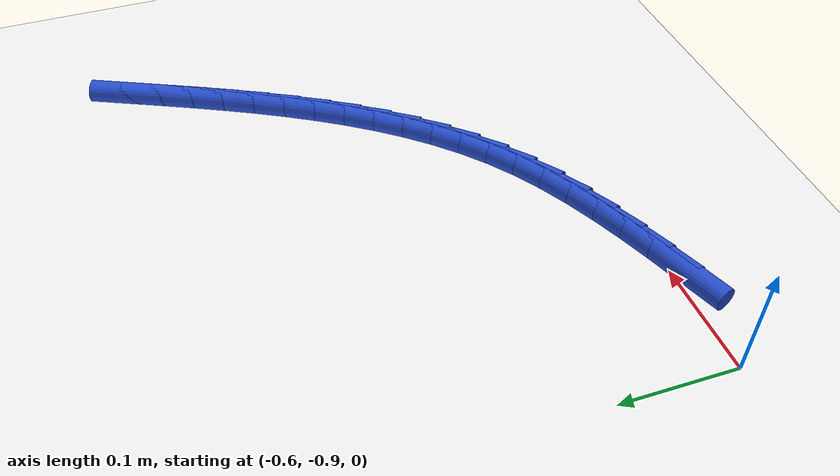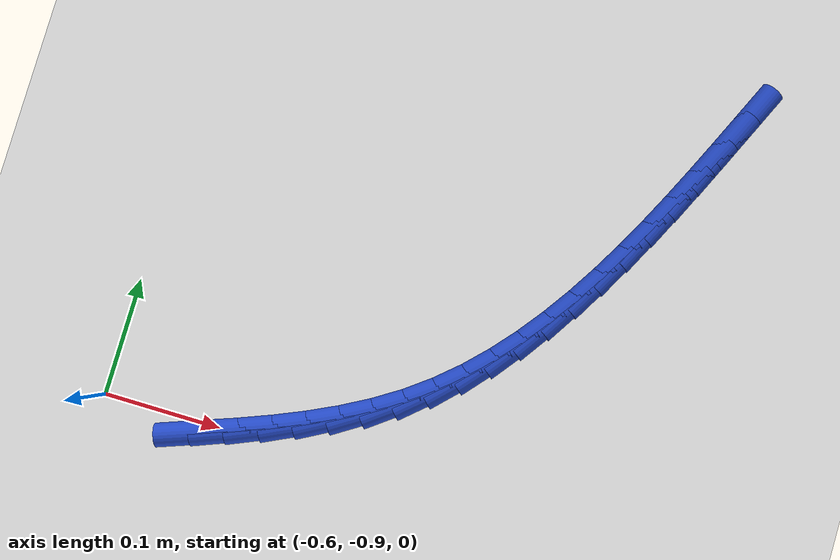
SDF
<sdf version="1.6">
 <world name="default">
  <model name="ground_plane">
   <static>1</static>
   <link name="link">
    <collision name="collision">
     <geometry><plane><normal>0 0 1</normal><size>100 100</size></plane></geometry>
     <surface><friction><ode><mu>100</mu><mu2>50</mu2></ode></friction></surface>
    </collision>
    <visual name="visual">
     <cast_shadows>0</cast_shadows>
     <geometry><plane><normal>0 0 1</normal><size>100 100</size></plane></geometry>
     <material>
      <script><uri>file://media/materials/scripts/gazebo.material</uri><name>Gazebo/WhiteGlow</name></script>
     </material>
    </visual>
   </link>
  </model>
  <model name="line">
   <link name="link_201">
    <pose>-0.5098203583864269 -0.9054280805790164 0.01 0 1.57 0.34645398073445816</pose>
    <collision name="collision">
     <geometry><cylinder><radius>0.01</radius><length>0.08</length></cylinder></geometry>
    </collision>
    <visual name="visual">
     <material>
      <script><name>Gazebo/Blue</name><uri>file://media/materials/scripts/gazebo.material</uri></script>
     </material>
     <geometry><cylinder><radius>0.01</radius><length>0.08</length></cylinder></geometry>
    </visual>
   </link>
   <link name="link_202">
    <pose>-0.48304616824735946 -0.895762192004251 0.01 0 1.57 0.3694622812659869</pose>
    <collision name="collision">
     <geometry><cylinder><radius>0.01</radius><length>0.08</length></cylinder></geometry>
    </collision>
    <visual name="visual">
     <material>
      <script><name>Gazebo/Blue</name><uri>file://media/materials/scripts/gazebo.material</uri></script>
     </material>
     <geometry><cylinder><radius>0.01</radius><length>0.08</length></cylinder></geometry>
    </visual>
   </link>
   <link name="link_203">
    <pose>-0.4564969303436542 -0.8854811409048057 0.01 0 1.57 0.40229129900350336</pose>
    <collision name="collision">
     <geometry><cylinder><radius>0.01</radius><length>0.08</length></cylinder></geometry>
    </collision>
    <visual name="visual">
     <material>
      <script><name>Gazebo/Blue</name><uri>file://media/materials/scripts/gazebo.material</uri></script>
     </material>
     <geometry><cylinder><radius>0.01</radius><length>0.08</length></cylinder></geometry>
    </visual>
   </link>
   <link name="link_204">
    <pose>-0.4304074893170143 -0.8743801693061244 0.01 0 1.57 0.4454743761160629</pose>
    <collision name="collision">
     <geometry><cylinder><radius>0.01</radius><length>0.08</length></cylinder></geometry>
    </collision>
    <visual name="visual">
     <material>
      <script><name>Gazebo/Blue</name><uri>file://media/materials/scripts/gazebo.material</uri></script>
     </material>
     <geometry><cylinder><radius>0.01</radius><length>0.08</length></cylinder></geometry>
    </visual>
   </link>
   <link name="link_205">
    <pose>-0.40501268980914173 -0.86225451923365 0.01 0 1.57 0.499673341517888</pose>
    <collision name="collision">
     <geometry><cylinder><radius>0.01</radius><length>0.08</length></cylinder></geometry>
    </collision>
    <visual name="visual">
     <material>
      <script><name>Gazebo/Blue</name><uri>file://media/materials/scripts/gazebo.material</uri></script>
     </material>
     <geometry><cylinder><radius>0.01</radius><length>0.08</length></cylinder></geometry>
    </visual>
   </link>
   <link name="link_206">
    <pose>-0.38054737646173903 -0.8488994327128258 0.01 0 1.57 0.5655487144489806</pose>
    <collision name="collision">
     <geometry><cylinder><radius>0.01</radius><length>0.08</length></cylinder></geometry>
    </collision>
    <visual name="visual">
     <material>
      <script><name>Gazebo/Blue</name><uri>file://media/materials/scripts/gazebo.material</uri></script>
     </material>
     <geometry><cylinder><radius>0.01</radius><length>0.08</length></cylinder></geometry>
    </visual>
   </link>
   <link name="link_207">
    <pose>-0.3572463939165087 -0.8341101517690946 0.01 0 1.57 0.6425597751406809</pose>
    <collision name="collision">
     <geometry><cylinder><radius>0.01</radius><length>0.08</length></cylinder></geometry>
    </collision>
    <visual name="visual">
     <material>
      <script><name>Gazebo/Blue</name><uri>file://media/materials/scripts/gazebo.material</uri></script>
     </material>
     <geometry><cylinder><radius>0.01</radius><length>0.08</length></cylinder></geometry>
    </visual>
   </link>
   <link name="link_208">
    <pose>-0.335325210093386 -0.8177014835829755 0.01 0 1.57 0.7201680291395077</pose>
    <collision name="collision">
     <geometry><cylinder><radius>0.01</radius><length>0.08</length></cylinder></geometry>
    </collision>
    <visual name="visual">
     <material>
      <script><name>Gazebo/Blue</name><uri>file://media/materials/scripts/gazebo.material</uri></script>
     </material>
     <geometry><cylinder><radius>0.01</radius><length>0.08</length></cylinder></geometry>
    </visual>
   </link>
   <link name="link_209">
    <pose>-0.3147979271712785 -0.7996915593026711 0.01 0 1.57 0.7914378000722023</pose>
    <collision name="collision">
     <geometry><cylinder><radius>0.01</radius><length>0.08</length></cylinder></geometry>
    </collision>
    <visual name="visual">
     <material>
      <script><name>Gazebo/Blue</name><uri>file://media/materials/scripts/gazebo.material</uri></script>
     </material>
     <geometry><cylinder><radius>0.01</radius><length>0.08</length></cylinder></geometry>
    </visual>
   </link>
   <link name="link_210">
    <pose>-0.29555924532906763 -0.7802190732281387 0.01 0 1.57 0.8557504039146893</pose>
    <collision name="collision">
     <geometry><cylinder><radius>0.01</radius><length>0.08</length></cylinder></geometry>
    </collision>
    <visual name="visual">
     <material>
      <script><name>Gazebo/Blue</name><uri>file://media/materials/scripts/gazebo.material</uri></script>
     </material>
     <geometry><cylinder><radius>0.01</radius><length>0.08</length></cylinder></geometry>
    </visual>
   </link>
   <link name="link_211">
    <pose>-0.27750229780245544 -0.7594243018406083 0.01 0 1.57 0.9129070796303762</pose>
    <collision name="collision">
     <geometry><cylinder><radius>0.01</radius><length>0.08</length></cylinder></geometry>
    </collision>
    <visual name="visual">
     <material>
      <script><name>Gazebo/Blue</name><uri>file://media/materials/scripts/gazebo.material</uri></script>
     </material>
     <geometry><cylinder><radius>0.01</radius><length>0.08</length></cylinder></geometry>
    </visual>
   </link>
   <link name="link_212">
    <pose>-0.2605202178271437 -0.737447521621311 0.01 0 1.57 0.9629591748524701</pose>
    <collision name="collision">
     <geometry><cylinder><radius>0.01</radius><length>0.08</length></cylinder></geometry>
    </collision>
    <visual name="visual">
     <material>
      <script><name>Gazebo/Blue</name><uri>file://media/materials/scripts/gazebo.material</uri></script>
     </material>
     <geometry><cylinder><radius>0.01</radius><length>0.08</length></cylinder></geometry>
    </visual>
   </link>
   <link name="link_213">
    <pose>-0.2445061386388344 -0.7144290090514773 0.01 0 1.57 1.0061185750153432</pose>
    <collision name="collision">
     <geometry><cylinder><radius>0.01</radius><length>0.08</length></cylinder></geometry>
    </collision>
    <visual name="visual">
     <material>
      <script><name>Gazebo/Blue</name><uri>file://media/materials/scripts/gazebo.material</uri></script>
     </material>
     <geometry><cylinder><radius>0.01</radius><length>0.08</length></cylinder></geometry>
    </visual>
   </link>
   <link name="link_214">
    <pose>-0.22935319347322944 -0.6905090406123384 0.01 0 1.57 1.042681320346106</pose>
    <collision name="collision">
     <geometry><cylinder><radius>0.01</radius><length>0.08</length></cylinder></geometry>
    </collision>
    <visual name="visual">
     <material>
      <script><name>Gazebo/Blue</name><uri>file://media/materials/scripts/gazebo.material</uri></script>
     </material>
     <geometry><cylinder><radius>0.01</radius><length>0.08</length></cylinder></geometry>
    </visual>
   </link>
   <link name="link_215">
    <pose>-0.2149545155660304 -0.6658278927851238 0.01 0 1.57 1.0729690245097625</pose>
    <collision name="collision">
     <geometry><cylinder><radius>0.01</radius><length>0.08</length></cylinder></geometry>
    </collision>
    <visual name="visual">
     <material>
      <script><name>Gazebo/Blue</name><uri>file://media/materials/scripts/gazebo.material</uri></script>
     </material>
     <geometry><cylinder><radius>0.01</radius><length>0.08</length></cylinder></geometry>
    </visual>
   </link>
   <link name="link_216">
    <pose>-0.20120323815293986 -0.6405258420510656 0.01 0 1.57 1.0972872176647532</pose>
    <collision name="collision">
     <geometry><cylinder><radius>0.01</radius><length>0.08</length></cylinder></geometry>
    </collision>
    <visual name="visual">
     <material>
      <script><name>Gazebo/Blue</name><uri>file://media/materials/scripts/gazebo.material</uri></script>
     </material>
     <geometry><cylinder><radius>0.01</radius><length>0.08</length></cylinder></geometry>
    </visual>
   </link>
   <link name="link_217">
    <pose>-0.18799249446965935 -0.6147431648913936 0.01 0 1.57 1.1158972838346914</pose>
    <collision name="collision">
     <geometry><cylinder><radius>0.01</radius><length>0.08</length></cylinder></geometry>
    </collision>
    <visual name="visual">
     <material>
      <script><name>Gazebo/Blue</name><uri>file://media/materials/scripts/gazebo.material</uri></script>
     </material>
     <geometry><cylinder><radius>0.01</radius><length>0.08</length></cylinder></geometry>
    </visual>
   </link>
   <link name="link_218">
    <pose>-0.17521541775189092 -0.588620137787339 0.01 0 1.57 1.1289981511975247</pose>
    <collision name="collision">
     <geometry><cylinder><radius>0.01</radius><length>0.08</length></cylinder></geometry>
    </collision>
    <visual name="visual">
     <material>
      <script><name>Gazebo/Blue</name><uri>file://media/materials/scripts/gazebo.material</uri></script>
     </material>
     <geometry><cylinder><radius>0.01</radius><length>0.08</length></cylinder></geometry>
    </visual>
   </link>
   <link name="link_219">
    <pose>-0.1627651412353364 -0.5622970372201327 0.01 0 1.57 1.1367143400923116</pose>
    <collision name="collision">
     <geometry><cylinder><radius>0.01</radius><length>0.08</length></cylinder></geometry>
    </collision>
    <visual name="visual">
     <material>
      <script><name>Gazebo/Blue</name><uri>file://media/materials/scripts/gazebo.material</uri></script>
     </material>
     <geometry><cylinder><radius>0.01</radius><length>0.08</length></cylinder></geometry>
    </visual>
   </link>
   <link name="link_220">
    <pose>-0.15053479815569767 -0.5359141396710044 0.01 0 1.57 1.1390877562970259</pose>
    <collision name="collision">
     <geometry><cylinder><radius>0.01</radius><length>0.08</length></cylinder></geometry>
    </collision>
    <visual name="visual">
     <material>
      <script><name>Gazebo/Blue</name><uri>file://media/materials/scripts/gazebo.material</uri></script>
     </material>
     <geometry><cylinder><radius>0.01</radius><length>0.08</length></cylinder></geometry>
    </visual>
   </link>
  </model>
 </world>
</sdf>
